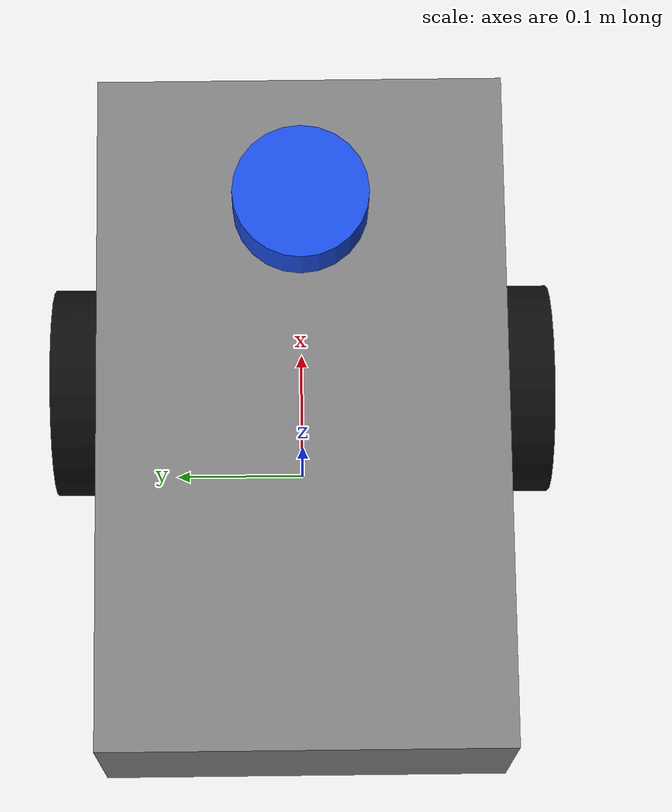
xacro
<?xml version="1.0"?>

<!--
robot.urdf.xacro
内含xacro写法, 但是不完全, 后续可以继续修改, 使文件更加简洁

内容:
机器人的形态及 Gazebo 插件, controller 插件
-->

<!-- xacro 声明 -->
<robot
    xmlns:xacro="http://www.ros.org/wiki/xacro"
    name="virtual_mobile_robot">

    <!-- 机器人参数                                           -->

    <!-- 本体 -->
    <xacro:property name="base_length" value="0.5"/>
    <xacro:property name="base_width" value="0.3"/>
    <xacro:property name="base_height" value="0.15"/>
    <xacro:property name="base_mass" value="5.0"/>

    <!-- 左右轮 -->
    <xacro:property name="wheel_radius" value="0.08"/>
    <xacro:property name="wheel_width" value="0.04"/>
    <xacro:property name="wheel_separation" value="0.34"/>
    <xacro:property name="wheel_x_offset" value="0.05"/>
    <xacro:property name="wheel_mass" value="0.5"/>

    <!-- 万向轮 -->
    <xacro:property name="caster_radius" value="0.04"/>
    <xacro:property name="caster_x_offset" value="-0.20"/>
    <xacro:property name="caster_mass" value="0.1"/>

    <!-- 雷达 -->
    <xacro:property name="lidar_radius" value="0.05"/>
    <xacro:property name="lidar_height" value="0.04"/>
    <xacro:property name="lidar_x_offset" value="0.15"/>
    <xacro:property name="lidar_z_offset" value="0.25"/>
    <xacro:property name="lidar_mass" value="0.2"/>

    <!-- Gazebo controller -->
    <xacro:property name="controllers_file" default="" />

    <!-- 全局 Gazebo 插件声明 -->
    <gazebo>
        <plugin
            filename="libgz_ros2_control-system.so"
            name="gz_ros2_control::GazeboSimROS2ControlPlugin">

            <parameters>$(arg controllers_file)</parameters>
        </plugin>
    </gazebo>

    <!--
        base_link 高度

        轮子中心高度：
        wheel_radius = 0.08
        车体中心高度：
        wheel_radius + base_height / 2 = 0.155
    -->
    <xacro:property
        name="base_center_z"
        value="${wheel_radius + base_height / 2.0}"/>

    <!-- 惯性宏                                              -->

    <!--
        长方体惯性宏

        x: X 方向长度
        y: Y 方向宽度
        z: Z 方向高度
    -->
    <xacro:macro
        name="box_inertial"
        params="mass x y z origin_xyz">

        <inertial>
            <origin
                xyz="${origin_xyz}"
                rpy="0.0 0.0 0.0"/>

            <mass value="${mass}"/>

            <inertia
                ixx="${mass * (y * y + z * z) / 12.0}"
                ixy="0.0"
                ixz="0.0"
                iyy="${mass * (x * x + z * z) / 12.0}"
                iyz="0.0"
                izz="${mass * (x * x + y * y) / 12.0}"/>
        </inertial>

    </xacro:macro>

    <!--
        适用于左右轮。
        圆柱轴线沿 Y 轴。
    -->
    <xacro:macro
        name="cylinder_inertial_y"
        params="mass radius length origin_xyz">

        <inertial>
            <origin
                xyz="${origin_xyz}"
                rpy="0.0 0.0 0.0"/>

            <mass value="${mass}"/>

            <inertia
                ixx="${mass * (3.0 * radius * radius + length * length) / 12.0}"
                ixy="0.0"
                ixz="0.0"
                iyy="${mass * radius * radius / 2.0}"
                iyz="0.0"
                izz="${mass * (3.0 * radius * radius + length * length) / 12.0}"/>
        </inertial>

    </xacro:macro>

    <!--
        适用于激光雷达外壳。
        圆柱轴线沿 Z 轴。
    -->
    <xacro:macro
        name="cylinder_inertial_z"
        params="mass radius length origin_xyz">

        <inertial>
            <origin
                xyz="${origin_xyz}"
                rpy="0.0 0.0 0.0"/>

            <mass value="${mass}"/>

            <inertia
                ixx="${mass * (3.0 * radius * radius + length * length) / 12.0}"
                ixy="0.0"
                ixz="0.0"
                iyy="${mass * (3.0 * radius * radius + length * length) / 12.0}"
                iyz="0.0"
                izz="${mass * radius * radius / 2.0}"/>
        </inertial>

    </xacro:macro>

    <!--
    万向轮惯性宏
    -->
    <xacro:macro
        name="sphere_inertial"
        params="mass radius origin_xyz">

        <inertial>
            <origin
                xyz="${origin_xyz}"
                rpy="0.0 0.0 0.0"/>

            <mass value="${mass}"/>

            <inertia
                ixx="${2.0 * mass * radius * radius / 5.0}"
                ixy="0.0"
                ixz="0.0"
                iyy="${2.0 * mass * radius * radius / 5.0}"
                iyz="0.0"
                izz="${2.0 * mass * radius * radius / 5.0}"/>
        </inertial>

    </xacro:macro>

    <!-- 车体定义                                             -->

    <link name="base_link">

        <visual>
            <origin
                xyz="0.0 0.0 ${base_center_z}"
                rpy="0.0 0.0 0.0"/>

            <geometry>
                <box
                    size="${base_length} ${base_width} ${base_height}"/>
            </geometry>

            <material name="gray">
                <color rgba="0.5 0.5 0.5 1.0"/>
            </material>
        </visual>

        <collision>
            <origin
                xyz="0.0 0.0 ${base_center_z}"
                rpy="0.0 0.0 0.0"/>

            <geometry>
                <box
                    size="${base_length} ${base_width} ${base_height}"/>
            </geometry>
        </collision>

        <xacro:box_inertial
            mass="${base_mass}"
            x="${base_length}"
            y="${base_width}"
            z="${base_height}"
            origin_xyz="0.0 0.0 ${base_center_z}"/>

    </link>

    <!-- Base Footprint (地面投影点, slam_toolbox 默认要找它) -->
    <link name="base_footprint"/>
    <joint name="base_footprint_joint" type="fixed">
        <parent link="base_link"/>
        <child link="base_footprint"/>
        <origin xyz="0.0 0.0 0.0" rpy="0.0 0.0 0.0"/>
    </joint>

    <!-- 两轮宏                                              -->

    <xacro:macro name="wheel" params="name y_position">

        <link name="${name}_wheel_link">

            <visual>
                <!--
                    URDF 中圆柱默认沿 Z 轴。

                    绕 X 轴旋转 90 度后，
                    圆柱轴变为沿 Y 轴。
                -->
                <origin
                    xyz="0.0 0.0 0.0"
                    rpy="${pi / 2.0} 0.0 0.0"/>

                <geometry>
                    <cylinder
                        radius="${wheel_radius}"
                        length="${wheel_width}"/>
                </geometry>

                <material name="${name}_wheel_black">
                    <color rgba="0.05 0.05 0.05 1.0"/>
                </material>
            </visual>

            <collision>
                <origin
                    xyz="0.0 0.0 0.0"
                    rpy="${pi / 2.0} 0.0 0.0"/>

                <geometry>
                    <cylinder
                        radius="${wheel_radius}"
                        length="${wheel_width}"/>
                </geometry>
            </collision>

            <xacro:cylinder_inertial_y
                mass="${wheel_mass}"
                radius="${wheel_radius}"
                length="${wheel_width}"
                origin_xyz="0.0 0.0 0.0"/>

        </link>

        <joint name="${name}_wheel_joint" type="continuous">
            <parent link="base_link"/>
            <child link="${name}_wheel_link"/>

            <origin
                xyz="${wheel_x_offset} ${y_position} ${wheel_radius}"
                rpy="0.0 0.0 0.0"/>

            <axis xyz="0.0 1.0 0.0"/>
        </joint>

    </xacro:macro>

    <!-- 两侧轮子的定义 -->
    <!-- Left wheel -->
    <xacro:wheel
        name="left"
        y_position="${wheel_separation / 2.0}"/>

    <gazebo reference="left_wheel_link">
        <collision>
            <surface>
                <friction>
                    <ode>
                        <mu>1.0</mu>
                        <mu2>1.0</mu2>
                    </ode>
                </friction>
            </surface>
        </collision>
    </gazebo>

    <!-- Right wheel -->
    <xacro:wheel
        name="right"
        y_position="${-wheel_separation / 2.0}"/>

    <gazebo reference="right_wheel_link">
        <collision>
            <surface>
                <friction>
                    <ode>
                        <mu>1.0</mu>
                        <mu2>1.0</mu2>
                    </ode>
                </friction>
            </surface>
        </collision>
    </gazebo>

    <!-- ROS2 control 接口声明                               -->

    <ros2_control name="GazeboSimSystem" type="system">
        <hardware>
            <plugin>gz_ros2_control/GazeboSimSystem</plugin>
        </hardware>

        <!-- left and right interface is here -->
        <joint name="left_wheel_joint">
            <!-- One command interface -->
            <command_interface name="velocity"/>
            <!-- Two state interface -->
            <state_interface name="position"/>
            <state_interface name="velocity"/>
        </joint>
        <joint name="right_wheel_joint">
            <!-- One command interface -->
            <command_interface name="velocity"/>
            <!-- Two state interface -->
            <state_interface name="position"/>
            <state_interface name="velocity"/>
        </joint>
    </ros2_control>

    <!-- Rear caster wheel                                  -->

    <link name="caster_link">

        <visual>
            <origin
                xyz="0.0 0.0 0.0"
                rpy="0.0 0.0 0.0"/>

            <geometry>
                <sphere radius="${caster_radius}"/>
            </geometry>

            <material name="caster_gray">
                <color rgba="0.25 0.25 0.25 1.0"/>
            </material>
        </visual>

        <collision>
            <origin
                xyz="0.0 0.0 0.0"
                rpy="0.0 0.0 0.0"/>

            <geometry>
                <sphere radius="${caster_radius}"/>
            </geometry>
        </collision>

        <xacro:sphere_inertial
            mass="${caster_mass}"
            radius="${caster_radius}"
            origin_xyz="0.0 0.0 0.0"/>

    </link>

    <joint name="caster_joint" type="fixed">
        <parent link="base_link"/>
        <child link="caster_link"/>

        <origin
            xyz="${caster_x_offset} 0.0 ${caster_radius}"
            rpy="0.0 0.0 0.0"/>
    </joint>

    <!-- Gazebo 雷达传感器                                  -->

    <gazebo reference="laser_frame">
        <sensor name="gpu_lidar" type="gpu_lidar">
            <!-- 雷达frame的名字 -->
            <gz_frame_id>laser_frame</gz_frame_id>

            <!-- 雷达传感器和frame的位置关系 -->
            <pose>0 0 0 0 0 0</pose>

            <!-- 扫描时持续发布 -->
            <always_on>true</always_on>

            <!-- 扫描频率 Hz -->
            <update_rate>10.0</update_rate>

            <!-- 雷达发布topic -->
            <topic>/scan</topic>

            <!-- 在 Gazebo 中展现雷达射线 -->

            <lidar>
                <scan>
                    <horizontal>
                        <!-- 雷达射线条数 -->
                        <samples>360</samples>

                        <!-- Usually keep resolution at 1 -->
                        <resolution>1.0</resolution>

                        <!-- 角度值范围 360° -->
                        <min_angle>-${pi}</min_angle>
                        <max_angle>${pi}</max_angle>
                    </horizontal>
                </scan>

                <!-- 雷达探测距离范围 -->
                <range>
                    <min>0.10</min>
                    <max>12.0</max>
                    <resolution>0.01</resolution>
                </range>

                <noise>
                    <type>gaussian</type>
                    <mean>0.0</mean>
                    <stddev>0.01</stddev>
                </noise>
            </lidar>

        </sensor>
    </gazebo>

    <!-- Lidar                                              -->

    <gazebo reference="laser_joint">
        <preserveFixedJoint>true</preserveFixedJoint>
    </gazebo>

    <link name="laser_frame">

        <visual>
            <origin
                xyz="0.0 0.0 0.0"
                rpy="0.0 0.0 0.0"/>

            <geometry>
                <cylinder
                    radius="${lidar_radius}"
                    length="${lidar_height}"/>
            </geometry>

            <material name="blue">
                <color rgba="0.1 0.3 0.9 1.0"/>
            </material>
        </visual>

        <collision>
            <origin
                xyz="0.0 0.0 0.0"
                rpy="0.0 0.0 0.0"/>

            <geometry>
                <cylinder
                    radius="${lidar_radius}"
                    length="${lidar_height}"/>
            </geometry>
        </collision>

        <xacro:cylinder_inertial_z
            mass="${lidar_mass}"
            radius="${lidar_radius}"
            length="${lidar_height}"
            origin_xyz="0.0 0.0 0.0"/>

    </link>

    <joint name="laser_joint" type="fixed">
        <parent link="base_link"/>
        <child link="laser_frame"/>

        <origin
            xyz="${lidar_x_offset} 0.0 ${lidar_z_offset}"
            rpy="0.0 0.0 0.0"/>
    </joint>

</robot>
